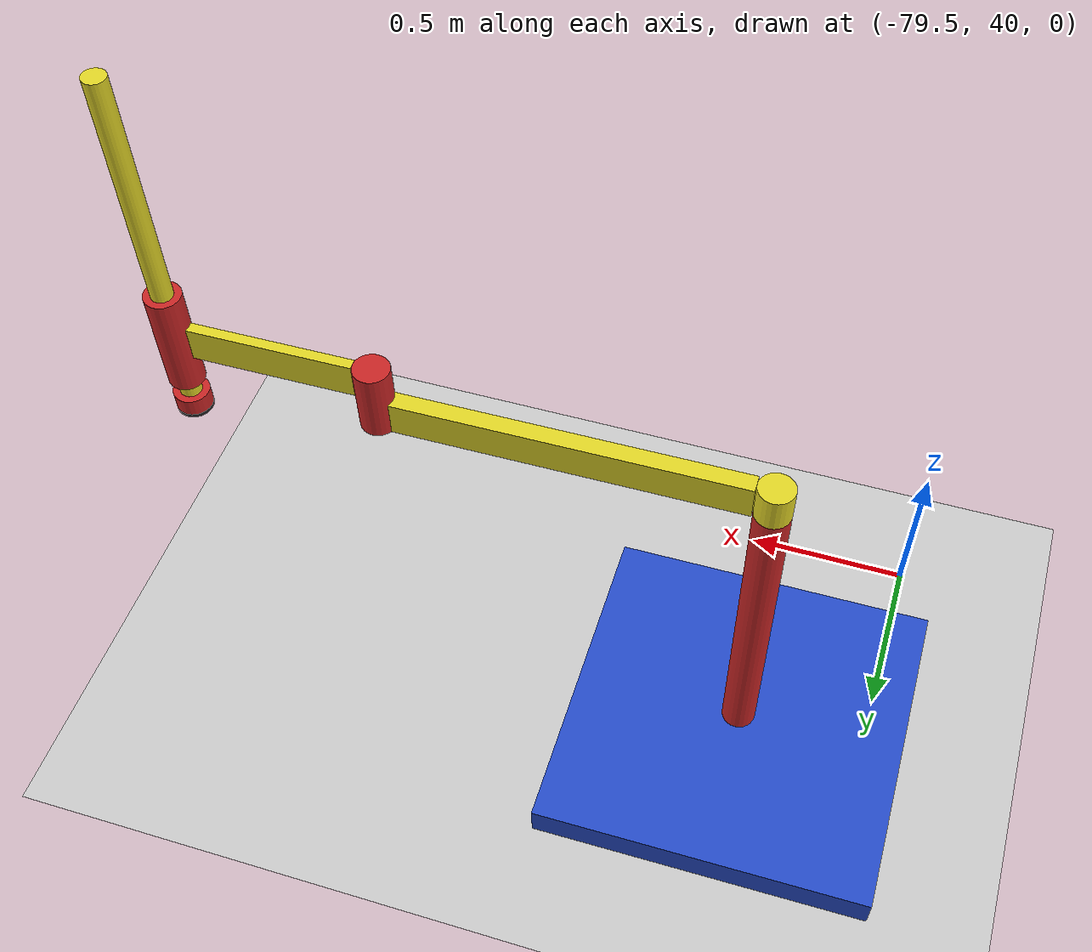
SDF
<sdf version="1.7">
 <world name="default">
  <model name="ground_plane">
   <static>1</static>
   <link name="link">
    <collision name="collision">
     <geometry><plane><normal>0 0 1</normal><size>100 100</size></plane></geometry>
     <surface><friction><ode><mu>100</mu><mu2>50</mu2></ode></friction></surface>
    </collision>
    <visual name="visual">
     <cast_shadows>0</cast_shadows>
     <geometry><plane><normal>0 0 1</normal><size>100 100</size></plane></geometry>
     <material>
      <script><uri>file://media/materials/scripts/gazebo.material</uri><name>Gazebo/Grey</name></script>
     </material>
    </visual>
   </link>
  </model>
  <model name="simple_arm_vacuum_gripper">
   <frame name="simple_arm::__model__" attached_to="simple_arm::arm_base">
    <pose relative_to="__model__">0 0 0 0 -0 0</pose>
   </frame>
   <link name="simple_arm::arm_base">
    <inertial>
     <pose>0 0 0.00099 0 -0 0</pose>
     <inertia><ixx>1.11</ixx><ixy>0</ixy><ixz>0</ixz><iyy>100.11</iyy><iyz>0</iyz><izz>1.01</izz></inertia>
     <mass>101</mass>
    </inertial>
    <collision name="arm_base_geom">
     <pose>0 0 0.05 0 -0 0</pose>
     <geometry><box><size>1 1 0.1</size></box></geometry>
    </collision>
    <visual name="arm_base_geom_visual">
     <pose>0 0 0.05 0 -0 0</pose>
     <geometry><box><size>1 1 0.1</size></box></geometry>
     <material>
      <script><uri>file://media/materials/scripts/gazebo.material</uri><name>Gazebo/Blue</name></script>
     </material>
    </visual>
    <collision name="arm_base_geom_arm_trunk">
     <pose>0 0 0.6 0 -0 0</pose>
     <geometry><cylinder><radius>0.05</radius><length>1</length></cylinder></geometry>
    </collision>
    <visual name="arm_base_geom_arm_trunk_visual">
     <pose>0 0 0.6 0 -0 0</pose>
     <geometry><cylinder><radius>0.05</radius><length>1</length></cylinder></geometry>
     <material>
      <script><uri>file://media/materials/scripts/gazebo.material</uri><name>Gazebo/Red</name></script>
     </material>
    </visual>
    <pose relative_to="simple_arm::__model__">0 0 0 0 -0 0</pose>
   </link>
   <link name="simple_arm::arm_shoulder_pan">
    <pose relative_to="simple_arm::__model__">0 0 1.1 0 -0 0</pose>
    <inertial>
     <pose>0.045455 0 0 0 -0 0</pose>
     <inertia><ixx>0.011</ixx><ixy>0</ixy><ixz>0</ixz><iyy>0.0225</iyy><iyz>0</iyz><izz>0.0135</izz></inertia>
     <mass>1.1</mass>
    </inertial>
    <collision name="arm_shoulder_pan_geom">
     <pose>0 0 0.05 0 -0 0</pose>
     <geometry><cylinder><radius>0.05</radius><length>0.1</length></cylinder></geometry>
    </collision>
    <visual name="arm_shoulder_pan_geom_visual">
     <pose>0 0 0.05 0 -0 0</pose>
     <geometry><cylinder><radius>0.05</radius><length>0.1</length></cylinder></geometry>
     <material>
      <script><uri>file://media/materials/scripts/gazebo.material</uri><name>Gazebo/Yellow</name></script>
     </material>
    </visual>
    <collision name="arm_shoulder_pan_geom_arm_shoulder">
     <pose>0.55 0 0.05 0 -0 0</pose>
     <geometry><box><size>1 0.05 0.1</size></box></geometry>
    </collision>
    <visual name="arm_shoulder_pan_geom_arm_shoulder_visual">
     <pose>0.55 0 0.05 0 -0 0</pose>
     <geometry><box><size>1 0.05 0.1</size></box></geometry>
     <material>
      <script><uri>file://media/materials/scripts/gazebo.material</uri><name>Gazebo/Yellow</name></script>
     </material>
    </visual>
   </link>
   <link name="simple_arm::arm_elbow_pan">
    <pose relative_to="simple_arm::__model__">1.05 0 1.1 0 -0 0</pose>
    <inertial>
     <pose>0.0875 0 0.083333 0 -0 0</pose>
     <inertia>
      <ixx>0.031</ixx>
      <ixy>0</ixy>
      <ixz>0.005</ixz>
      <iyy>0.07275</iyy>
      <iyz>0</iyz>
      <izz>0.04475</izz>
     </inertia>
     <mass>1.2</mass>
    </inertial>
    <collision name="arm_elbow_pan_geom">
     <pose>0 0 0.1 0 -0 0</pose>
     <geometry><cylinder><radius>0.05</radius><length>0.2</length></cylinder></geometry>
    </collision>
    <visual name="arm_elbow_pan_geom_visual">
     <pose>0 0 0.1 0 -0 0</pose>
     <geometry><cylinder><radius>0.05</radius><length>0.2</length></cylinder></geometry>
     <material>
      <script><uri>file://media/materials/scripts/gazebo.material</uri><name>Gazebo/Red</name></script>
     </material>
    </visual>
    <collision name="arm_elbow_pan_geom_arm_elbow">
     <pose>0.3 0 0.15 0 -0 0</pose>
     <geometry><box><size>0.5 0.03 0.1</size></box></geometry>
    </collision>
    <visual name="arm_elbow_pan_geom_arm_elbow_visual">
     <pose>0.3 0 0.15 0 -0 0</pose>
     <geometry><box><size>0.5 0.03 0.1</size></box></geometry>
     <material>
      <script><uri>file://media/materials/scripts/gazebo.material</uri><name>Gazebo/Yellow</name></script>
     </material>
    </visual>
    <collision name="arm_elbow_pan_geom_arm_wrist">
     <pose>0.55 0 0.15 0 -0 0</pose>
     <geometry><cylinder><radius>0.05</radius><length>0.3</length></cylinder></geometry>
    </collision>
    <visual name="arm_elbow_pan_geom_arm_wrist_visual">
     <pose>0.55 0 0.15 0 -0 0</pose>
     <geometry><cylinder><radius>0.05</radius><length>0.3</length></cylinder></geometry>
     <material>
      <script><uri>file://media/materials/scripts/gazebo.material</uri><name>Gazebo/Red</name></script>
     </material>
    </visual>
   </link>
   <link name="simple_arm::arm_wrist_lift">
    <pose relative_to="simple_arm::__model__">1.6 0 1.05 0 -0 0</pose>
    <inertial>
     <inertia><ixx>0.01</ixx><ixy>0</ixy><ixz>0</ixz><iyy>0.01</iyy><iyz>0</iyz><izz>0.001</izz></inertia>
     <mass>0.1</mass>
    </inertial>
    <collision name="arm_wrist_lift_geom">
     <pose>0 0 0.5 0 -0 0</pose>
     <geometry><cylinder><radius>0.03</radius><length>1</length></cylinder></geometry>
    </collision>
    <visual name="arm_wrist_lift_geom_visual">
     <pose>0 0 0.5 0 -0 0</pose>
     <geometry><cylinder><radius>0.03</radius><length>1</length></cylinder></geometry>
     <material>
      <script><uri>file://media/materials/scripts/gazebo.material</uri><name>Gazebo/Yellow</name></script>
     </material>
    </visual>
   </link>
   <link name="simple_arm::arm_wrist_roll">
    <pose relative_to="simple_arm::__model__">1.6 0 1 0 -0 0</pose>
    <inertial>
     <inertia><ixx>0.01</ixx><ixy>0</ixy><ixz>0</ixz><iyy>0.01</iyy><iyz>0</iyz><izz>0.001</izz></inertia>
     <mass>0.1</mass>
    </inertial>
    <collision name="arm_wrist_roll_geom">
     <pose>0 0 0.025 0 -0 0</pose>
     <geometry><cylinder><radius>0.05</radius><length>0.05</length></cylinder></geometry>
    </collision>
    <visual name="arm_wrist_roll_geom_visual">
     <pose>0 0 0.025 0 -0 0</pose>
     <geometry><cylinder><radius>0.05</radius><length>0.05</length></cylinder></geometry>
     <material>
      <script><uri>file://media/materials/scripts/gazebo.material</uri><name>Gazebo/Red</name></script>
     </material>
    </visual>
   </link>
   <joint name="simple_arm::arm_shoulder_pan_joint" type="revolute">
    <parent>simple_arm::arm_base</parent>
    <child>simple_arm::arm_shoulder_pan</child>
    <axis>
     <dynamics>
      <damping>1</damping>
      <friction>0</friction>
      <spring_reference>0</spring_reference>
      <spring_stiffness>0</spring_stiffness>
     </dynamics>
     <xyz expressed_in="simple_arm::__model__">0 0 1</xyz>
     <limit><lower>-1e+16</lower><upper>1e+16</upper></limit>
    </axis>
   </joint>
   <joint name="simple_arm::arm_elbow_pan_joint" type="revolute">
    <parent>simple_arm::arm_shoulder_pan</parent>
    <child>simple_arm::arm_elbow_pan</child>
    <axis>
     <dynamics>
      <damping>1</damping>
      <friction>0</friction>
      <spring_reference>0</spring_reference>
      <spring_stiffness>0</spring_stiffness>
     </dynamics>
     <xyz expressed_in="simple_arm::__model__">0 0 1</xyz>
     <limit><lower>-1e+16</lower><upper>1e+16</upper></limit>
    </axis>
   </joint>
   <joint name="simple_arm::arm_wrist_lift_joint" type="prismatic">
    <parent>simple_arm::arm_elbow_pan</parent>
    <child>simple_arm::arm_wrist_lift</child>
    <axis>
     <dynamics>
      <damping>1</damping>
      <friction>0</friction>
      <spring_reference>0</spring_reference>
      <spring_stiffness>0</spring_stiffness>
     </dynamics>
     <limit><lower>-0.8</lower><upper>0.1</upper></limit>
     <xyz expressed_in="simple_arm::__model__">0 0 1</xyz>
    </axis>
   </joint>
   <joint name="simple_arm::arm_wrist_roll_joint" type="revolute">
    <parent>simple_arm::arm_wrist_lift</parent>
    <child>simple_arm::arm_wrist_roll</child>
    <axis>
     <dynamics>
      <damping>1</damping>
      <friction>0</friction>
      <spring_reference>0</spring_reference>
      <spring_stiffness>0</spring_stiffness>
     </dynamics>
     <limit><lower>-2.99999</lower><upper>2.99999</upper></limit>
     <xyz expressed_in="simple_arm::__model__">0 0 1</xyz>
    </axis>
   </joint>
   <model name="vacuum_gripper">
    <frame name="vacuum_gripper::__model__" attached_to="vacuum_gripper::suction_cup">
     <pose relative_to="__model__">1.6 0 0.99 0 -0 0</pose>
    </frame>
    <link name="vacuum_gripper::suction_cup">
     <pose relative_to="vacuum_gripper::__model__">0 0 0.005 0 -0 0</pose>
     <inertial>
      <inertia><ixx>6.3e-06</ixx><ixy>0</ixy><ixz>0</ixz><iyy>6.3e-06</iyy><iyz>0</iyz><izz>2.5e-05</izz></inertia>
      <mass>0.01</mass>
     </inertial>
     <collision name="collision_base_gripper">
      <geometry><cylinder><radius>0.05</radius><length>0.01</length></cylinder></geometry>
     </collision>
     <visual name="visual_base_gripper">
      <geometry><cylinder><radius>0.05</radius><length>0.01</length></cylinder></geometry>
      <material>
       <script><uri>file://media/materials/scripts/gazebo.material</uri><name>Gazebo/Black</name></script>
      </material>
     </visual>
    </link>
    <plugin name="ros_vacuum_gripper" filename="libROSVacuumGripperPlugin.so">
     <grasp_check>
      <detach_steps>40</detach_steps>
      <attach_steps>2</attach_steps>
      <min_contact_count>1</min_contact_count>
     </grasp_check>
     <suction_cup_link>simple_arm_vacuum_gripper::vacuum_gripper::vacuum_gripper::suction_cup</suction_cup_link>
     <drops>
      <drop_region><min>-10 -10 0</min><max>10 10 2.5</max></drop_region>
      <object><type>beer</type><destination>0 0 0.2 0 0 0</destination></object>
     </drops>
     <robot_namespace>ariac</robot_namespace>
     <control_topic>gripper/control</control_topic>
     <state_topic>gripper/state</state_topic>
    </plugin>
   </model>
   <joint name="arm_gripper_joint" type="revolute">
    <parent>simple_arm::arm_wrist_roll</parent>
    <child>vacuum_gripper::suction_cup</child>
    <axis>
     <limit><lower>0</lower><upper>0</upper></limit>
     <xyz expressed_in="__model__">0 0 1</xyz>
     <dynamics><spring_reference>0</spring_reference><spring_stiffness>0</spring_stiffness></dynamics>
    </axis>
   </joint>
   <pose>-79.1139 40.7282 0.009759 -0.000483 -1e-06 0.006585</pose>
  </model>
 </world>
</sdf>
